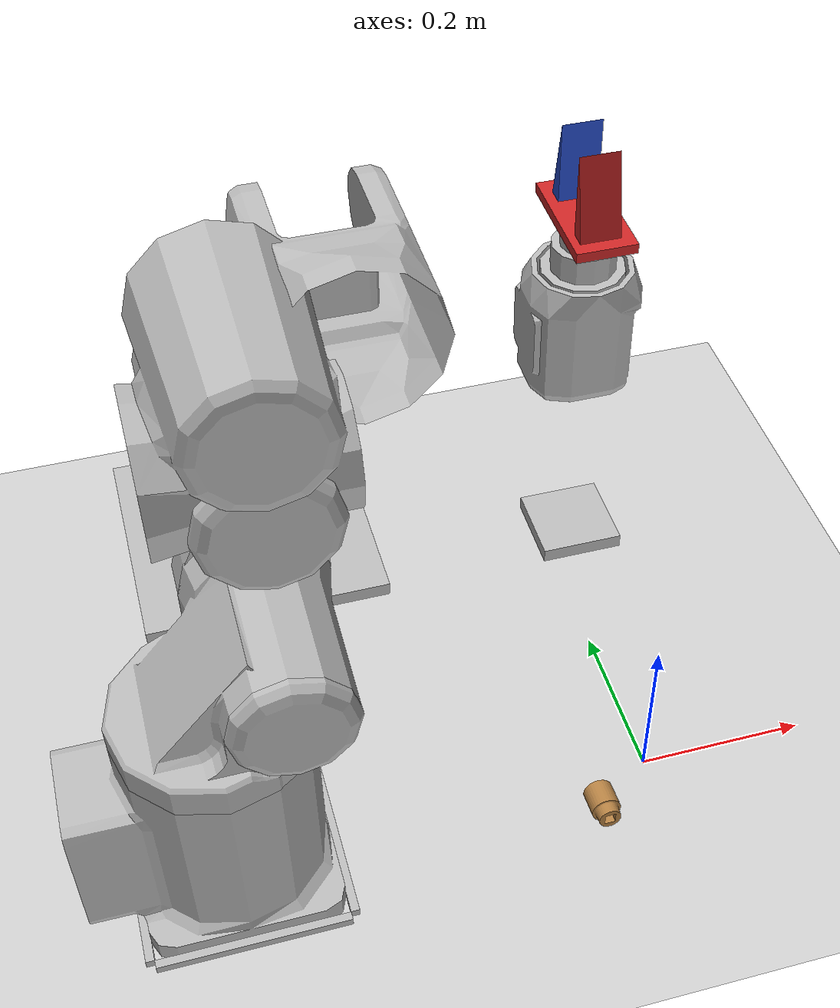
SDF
<?xml version="1.0" encoding="UTF-8"?>
<sdf version="1.4">
   <world name="default">
      <!-- Ground Plane -->
      <include>
         <uri>model://sun</uri>
      </include>

		<include>
			<uri>model://ground_plane</uri>
		</include>
      <scene>
         <sky>
            <clouds>
               <ambient>.5 .5 .5 1</ambient>
            </clouds>
         </sky>

      </scene>

<!--****以上是場景*******************************************-->

      <include>
<pose>-0.4 0.4 -0.35 0.000000 0.000000 0.000000</pose>
         <uri>/home/kevin/research/gazebo/evaluation_platform/models/table</uri>
      </include>

      <include>

<pose>0 0.3 -0.35 0.000000 0.000000 0.000000</pose>
         <uri>/home/kevin/research/gazebo/evaluation_platform/models/smalltable</uri>
      </include>

      <include>
<pose>-0.5 0 0  0.000000 0.000000 0.000000</pose>
         <uri>/home/kevin/research/gazebo/Arm_Control2/model/fixer_ar07</uri>
      </include>

	<include>
		<pose>-0.5 0 0 0 0 0</pose>
			<uri>/home/kevin/research/gazebo/Arm_Control2/model/ar6aixs</uri>
		</include>

	<include>
		<pose>-0.072305 -0.056376 0.017396 1.5 0 0</pose>
			<uri>/home/kevin/research/gazebo/Arm_Control2/model/socket_simple</uri>
		</include>

   </world>
</sdf>

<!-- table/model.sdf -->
<sdf version="1.4">

<model name="table">
<static>true</static>

<link name="link">
			<pose>0.000000 0.000000 0.473684 0.000000 0.000000 0.000000</pose>
        <inertial>
            <mass>1</mass>
            <inertia>
               <ixx>0.5</ixx>
               <ixy>0.0</ixy>
               <iyy>0.5</iyy>
               <ixz>0.0</ixz>
               <iyz>0.0</iyz>
               <izz>0.5</izz>
            </inertia>
         </inertial>
			<collision name="collision">
				<geometry>
				<box>
					<size>0.3 0.3 0.0175</size>
				</box>
        </geometry>
      </collision>
      <visual name="visual">
        <geometry>
				<box>
					<size>0.3 0.3 0.0175</size>
				</box>
		  </geometry>
      </visual>
    </link>

</model>
</sdf>

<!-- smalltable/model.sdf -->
<sdf version="1.4">

<model name="smalltable">
<static>true</static>

<link name="link">
			<pose>0.000000 0.000000 0.473684 0.000000 0.000000 0.000000</pose>
        <inertial>
            <mass>1</mass>
            <inertia>
               <ixx>0.5</ixx>
               <ixy>0.0</ixy>
               <iyy>0.5</iyy>
               <ixz>0.0</ixz>
               <iyz>0.0</iyz>
               <izz>0.5</izz>
            </inertia>
         </inertial>
			<collision name="collision">
				<geometry>
				<box>
					<size>0.1 0.1 0.0175</size>
				</box>
        </geometry>
      </collision>
      <visual name="visual">
        <geometry>
				<box>
					<size>0.1 0.1 0.0175</size>
				</box>
		  </geometry>
      </visual>
    </link>

</model>
</sdf>

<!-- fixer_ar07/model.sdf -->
<sdf version="1.4">

 <model name="fixer_ar07">
         <static>true</static>
         <link name="fixer">
            <pose>-0.115 0.000000 0.005 0.000000 0.000000 0.000000</pose>
            <inertial>
               <mass>.1</mass>
               <inertia>
                  <ixx>0.05</ixx>
                  <ixy>0.0</ixy>
                  <iyy>0.05</iyy>
                  <ixz>0.0</ixz>
                  <iyz>0.0</iyz>
                  <izz>0.05</izz>
               </inertia>
            </inertial>
            <collision name="fixer">
               <surface>
                  <friction>
                     <ode>
                        <mu>100000.0</mu>
                        <mu2>100000.0</mu2>
                        <slip1>0.0</slip1>
                        <slip2>0.0</slip2>
                     </ode>
                  </friction>
               </surface>
               <geometry>
                  <box>
                     <size>0.01 0.22  0.01</size>
                  </box>
               </geometry>
            </collision>
            <visual name="visual">
               <geometry>
                  <box>
                     <size> 0.01 0.22 0.01</size>
                  </box>
               </geometry>
            </visual>
         </link>
         <link name="fixr">
            <pose> 0.000000 -0.115 0.005 0.000000 0.000000 0.000000</pose>
            <inertial>
               <mass>.1</mass>
               <inertia>
                  <ixx>0.05</ixx>
                  <ixy>0.0</ixy>
                  <iyy>0.05</iyy>
                  <ixz>0.0</ixz>
                  <iyz>0.0</iyz>
                  <izz>0.05</izz>
               </inertia>
            </inertial>
            <collision name="fixer">
               <surface>
                  <friction>
                     <ode>
                        <mu>100000.0</mu>
                        <mu2>100000.0</mu2>
                        <slip1>0.0</slip1>
                        <slip2>0.0</slip2>
                     </ode>
                  </friction>
               </surface>
               <geometry>
                  <box>
                     <size>0.22 0.01   0.01</size>
                  </box>
               </geometry>
            </collision>
            <visual name="visual">
               <geometry>
                  <box>
                     <size> 0.22 0.01 0.01</size>
                  </box>
               </geometry>
            </visual>
         </link>

         <link name="fixefr">
            <pose>0.115 0.000000 0.005 0.000000 0.000000 0.000000</pose>
            <inertial>
               <mass>.1</mass>
               <inertia>
                  <ixx>0.05</ixx>
                  <ixy>0.0</ixy>
                  <iyy>0.05</iyy>
                  <ixz>0.0</ixz>
                  <iyz>0.0</iyz>
                  <izz>0.05</izz>
               </inertia>
            </inertial>
            <collision name="fixer">
               <surface>
                  <friction>
                     <ode>
                        <mu>100000.0</mu>
                        <mu2>100000.0</mu2>
                        <slip1>0.0</slip1>
                        <slip2>0.0</slip2>
                     </ode>
                  </friction>
               </surface>
               <geometry>
                  <box>
                     <size>0.01 0.22  0.01</size>
                  </box>
               </geometry>
            </collision>
            <visual name="visual">
               <geometry>
                  <box>
                     <size> 0.01 0.22 0.01</size>
                  </box>
               </geometry>
            </visual>
         </link>
         <link name="fqixr">
            <pose> 0.000000 0.115 0.005 0.000000 0.000000 0.000000</pose>
            <inertial>
               <mass>.1</mass>
               <inertia>
                  <ixx>0.05</ixx>
                  <ixy>0.0</ixy>
                  <iyy>0.05</iyy>
                  <ixz>0.0</ixz>
                  <iyz>0.0</iyz>
                  <izz>0.05</izz>
               </inertia>
            </inertial>
            <collision name="fixer">
               <surface>
                  <friction>
                     <ode>
                        <mu>100000.0</mu>
                        <mu2>100000.0</mu2>
                        <slip1>0.0</slip1>
                        <slip2>0.0</slip2>
                     </ode>
                  </friction>
               </surface>
               <geometry>
                  <box>
                     <size>0.22 0.01   0.01</size>
                  </box>
               </geometry>
            </collision>
            <visual name="visual">
               <geometry>
                  <box>
                     <size> 0.22 0.01 0.01</size>
                  </box>
               </geometry>
            </visual>
         </link>

      </model>
</sdf>

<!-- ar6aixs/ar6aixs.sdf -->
<sdf version="1.5">
   <model name="ar6aixs">
      <link name="base">
         <pose>0.000000 0.000000 0.125 0.000000 0.000000 0.000000</pose>
         <inertial>
            <mass>2000</mass>
            <inertia>
               <ixx>0.1</ixx>
               <ixy>0.0</ixy>
               <iyy>0.1</iyy>
               <ixz>0.0</ixz>
               <iyz>0.0</iyz>
               <izz>0.1</izz>
            </inertia>
         </inertial>
         <collision name="Base">
            <geometry>
               <mesh>
                  <uri>/home/kevin/research/gazebo/arm_control_AR605/model/ar6aixs/mesh/base.dae</uri>
               </mesh>
            </geometry>
            <surface>
               <friction>
                  <ode>
                     <mu>100</mu>
                     <mu2>50</mu2>
                  </ode>
               </friction>
            </surface>
         </collision>
         <visual name="Base">
            <geometry>
               <mesh>
                  <uri>/home/kevin/research/gazebo/arm_control_AR605/model/ar6aixs/mesh/base.dae</uri>
               </mesh>
            </geometry>
         </visual>
      </link>
      <link name="link1">
         <pose>0.000000 0.000000 0.25 0.000000 0.000000 0.000000</pose>
         <inertial>
            <mass>0.1</mass>
            <inertia>
               <ixx>0.1</ixx>
               <ixy>0.0</ixy>
               <iyy>0.1</iyy>
               <ixz>0.0</ixz>
               <iyz>0.0</iyz>
               <izz>0.1</izz>
            </inertia>
         </inertial>
         <collision name="link1">
            <geometry>
               <mesh>
                  <uri>/home/kevin/research/gazebo/arm_control_AR605/model/ar6aixs/mesh/link1.dae</uri>
               </mesh>
            </geometry>
            <surface>
               <friction>
                  <ode>
                     <mu>100</mu>
                     <mu2>50</mu2>
                  </ode>
               </friction>
            </surface>
         </collision>
         <visual name="link1">
            <geometry>
               <mesh>
                  <uri>/home/kevin/research/gazebo/arm_control_AR605/model/ar6aixs/mesh/link1.dae</uri>
               </mesh>
            </geometry>
         </visual>
      </link>
      <link name="link2">
         <pose>0.075000 0.000 0.345 0.000000 0.000000 0.000000</pose>
         <inertial>
            <mass>0.1</mass>
            <inertia>
               <ixx>0.1</ixx>
               <ixy>0.0</ixy>
               <iyy>0.1</iyy>
               <ixz>0.0</ixz>
               <iyz>0.0</iyz>
               <izz>0.1</izz>
            </inertia>
         </inertial>
         <collision name="link2">
            <geometry>
               <mesh>
                  <uri>/home/kevin/research/gazebo/arm_control_AR605/model/ar6aixs/mesh/link2.dae</uri>
               </mesh>
            </geometry>
            <surface>
               <friction>
                  <ode>
                     <mu>100</mu>
                     <mu2>50</mu2>
                  </ode>
               </friction>
            </surface>
         </collision>
         <visual name="link2">
            <geometry>
               <mesh>
                  <uri>/home/kevin/research/gazebo/arm_control_AR605/model/ar6aixs/mesh/link2.dae</uri>
               </mesh>
            </geometry>
         </visual>
      </link>
      <link name="link3">
         <pose>0.075000 0.000 0.615 0.000000 0.000000 0.000000</pose>
         <inertial>
            <mass>0.1</mass>
            <inertia>
               <ixx>0.1</ixx>
               <ixy>0.0</ixy>
               <iyy>0.1</iyy>
               <ixz>0.0</ixz>
               <iyz>0.0</iyz>
               <izz>0.1</izz>
            </inertia>
         </inertial>
         <collision name="link3">
            <geometry>
               <mesh>
                  <uri>/home/kevin/research/gazebo/arm_control_AR605/model/ar6aixs/mesh/link3.dae</uri>
               </mesh>
            </geometry>
            <surface>
               <friction>
                  <ode>
                     <mu>100</mu>
                     <mu2>50</mu2>
                  </ode>
               </friction>
            </surface>
         </collision>
         <visual name="link3">
            <geometry>
               <mesh>
                  <uri>/home/kevin/research/gazebo/arm_control_AR605/model/ar6aixs/mesh/link3.dae</uri>
               </mesh>
            </geometry>
         </visual>
      </link>
      <link name="link4">
         <pose>0.1810 0.000 0.705 0.000000 0.000000 0.000000</pose>
         <inertial>
            <mass>0.1</mass>
            <inertia>
               <ixx>0.1</ixx>
               <ixy>0.0</ixy>
               <iyy>0.1</iyy>
               <ixz>0.0</ixz>
               <iyz>0.0</iyz>
               <izz>0.1</izz>
            </inertia>
         </inertial>
         <collision name="link4">
            <geometry>
               <mesh>
                  <uri>/home/kevin/research/gazebo/arm_control_AR605/model/ar6aixs/mesh/link4.dae</uri>
               </mesh>
            </geometry>
            <surface>
               <friction>
                  <ode>
                     <mu>100</mu>
                     <mu2>50</mu2>
                  </ode>
               </friction>
            </surface>
         </collision>
         <visual name="link4">
            <geometry>
               <mesh>
                  <uri>/home/kevin/research/gazebo/arm_control_AR605/model/ar6aixs/mesh/link4.dae</uri>
               </mesh>
            </geometry>
         </visual>
      </link>
      <link name="link5">
         <pose>0.3750 0.000 0.705 0.000000 0.000000 0.000000</pose>
         <inertial>
            <mass>0.1</mass>
            <inertia>
               <ixx>0.1</ixx>
               <ixy>0.0</ixy>
               <iyy>0.1</iyy>
               <ixz>0.0</ixz>
               <iyz>0.0</iyz>
               <izz>0.1</izz>
            </inertia>
         </inertial>
         <collision name="link5">
            <geometry>
               <mesh>
                  <uri>/home/kevin/research/gazebo/arm_control_AR605/model/ar6aixs/mesh/link5.dae</uri>
               </mesh>
            </geometry>
            <surface>
               <friction>
                  <ode>
                     <mu>100</mu>
                     <mu2>50</mu2>
                  </ode>
               </friction>
            </surface>
         </collision>
         <visual name="link5">
            <geometry>
               <mesh>
                  <uri>/home/kevin/research/gazebo/arm_control_AR605/model/ar6aixs/mesh/link5.dae</uri>
               </mesh>
            </geometry>
         </visual>
      </link>
      <link name="link6">
         <pose>0.3750 0.000 0.705 0.000000 0.000000 0.000000</pose>
         <inertial>
            <mass>0.1</mass>
            <inertia>
               <ixx>0.1</ixx>
               <ixy>0.0</ixy>
               <iyy>0.1</iyy>
               <ixz>0.0</ixz>
               <iyz>0.0</iyz>
               <izz>0.1</izz>
            </inertia>
         </inertial>
         <collision name="link6">
            <geometry>
               <mesh>
                  <uri>/home/kevin/research/gazebo/arm_control_AR605/model/ar6aixs/mesh/link6.dae</uri>
               </mesh>
            </geometry>
            <surface>
               <friction>
                  <ode>
                     <mu>100</mu>
                     <mu2>50</mu2>
                  </ode>
               </friction>
            </surface>
         </collision>
         <visual name="link6">
            <geometry>
               <mesh>
                  <uri>/home/kevin/research/gazebo/arm_control_AR605/model/ar6aixs/mesh/link6.dae</uri>
               </mesh>
            </geometry>
         </visual>
      </link>

      <joint name="joint0" type="fixed">
         <pose>0.000000 0.000000 0.0 0.000000 0.000000 0.000000</pose>
         <child>base</child>
         <parent>world</parent>
         <axis>
            <xyz>0 0 1</xyz>
         </axis>
      </joint>

      <joint name="joint1" type="revolute">
         <pose>0.000000 0.000000 0.0 0.000000 0.000000 0.000000</pose>
         <child>link1</child>
         <parent>base</parent>
         <axis>
            <xyz>0 0 1</xyz>
            <limit>
               <lower>-2.967</lower>
               <upper>2.967</upper>
            </limit>
         </axis>
      </joint>
      <joint name="joint2" type="revolute">
         <pose>0.000000 0.000000 0.0 0.000000 0.000000 0.000000</pose>
         <child>link2</child>
         <parent>link1</parent>
         <axis>
            <xyz>0 1 0</xyz>
            <limit>
               <lower>-1.4835</lower>
               <upper>2.2689</upper>
            </limit>
         </axis>
      </joint>
      <joint name="joint3" type="revolute">
         <pose>0.000000 0.000000 0.0 0.000000 0.000000 0.000000</pose>
         <child>link3</child>
         <parent>link2</parent>
         <axis>
            <xyz>0 1 0</xyz>
            <limit>
               <lower>-1.919</lower>
               <upper>2.967</upper>
            </limit>
         </axis>
      </joint>
      <joint name="joint4" type="revolute">
         <pose>0.000000 0.000000 0.0 0.000000 0.000000 0.000000</pose>
         <child>link4</child>
         <parent>link3</parent>
         <axis>
            <xyz>1 0 0</xyz>
            <limit>
               <lower>-3.316</lower>
               <upper>3.316</upper>
            </limit>
         </axis>
      </joint>
      <joint name="joint5" type="revolute">
         <pose>0.000000 0.000000 0.0 0.000000 0.000000 0.000000</pose>
         <child>link5</child>
         <parent>link4</parent>
         <axis>
            <xyz>0 1 0</xyz>
            <limit>
               <lower>-2.1816</lower>
               <upper>2.1816</upper>
            </limit>
         </axis>
      </joint>
      <joint name="joint6" type="revolute">
         <pose>0.000000 0.000000 0.0 0.000000 0.000000 0.000000</pose>
         <child>link6</child>
         <parent>link5</parent>
         <axis>
            <xyz> 0 0 1 </xyz>
            <limit>
               <lower>-6.28</lower>
               <upper>6.28</upper>
            </limit>
         </axis>
      </joint>

	<include>
		<pose>0.375000 0.000000 0.8760  3.1415926 0 0.000000</pose>
		<uri>/home/kevin/research/gazebo/arm_control_AR605/model/gripper</uri>
	</include>

 <!--joint_6_gripper -->
     <joint name="joint7" type="revolute">
      <pose>0.000000 0.000000 0.004386 0.000000 0.000000 0.000000</pose>
      <child>gripper::plam</child>
      <parent>link6</parent>
      <axis>
         <xyz>0 0 1</xyz>
         <limit>
          <lower>0</lower>
          <upper>0</upper>
         </limit>
      </axis>
   </joint>

 <plugin name="ccc" filename="/home/kevin/research/gazebo/arm_control_AR605/Debug/libarm_control_AR605.so" />
   </model>
</sdf>

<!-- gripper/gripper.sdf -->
<sdf version="1.4">
   <model name="gripper">
      <link name="plam">
         <pose>0.000000 0.000000 0.074561 0.000000 0.000000 0.000000</pose>
         <inertial>
            <mass>.1</mass>
            <inertia>
               <ixx>0.05</ixx>
               <ixy>0.0</ixy>
               <iyy>0.05</iyy>
               <ixz>0.0</ixz>
               <iyz>0.0</iyz>
               <izz>0.05</izz>
            </inertia>
         </inertial>
         <collision name="collision">
            <surface>
               <friction>
                  <ode>
                     <mu>100000.0</mu>
                     <mu2>100000.0</mu2>
                     <slip1>0.0</slip1>
                     <slip2>0.0</slip2>
                  </ode>
               </friction>
            </surface>
            <geometry>
               <box>
                  <size>0.052632 0.105263 0.008772</size>
               </box>
            </geometry>
         </collision>
         <visual name="visual">
            <geometry>
               <box>
                  <size>0.052632 0.105263 0.008772</size>
               </box>
            </geometry>
            <material>
               <script>
                  <uri>file://media/materials/scripts/gazebo.material</uri>
                  <name>Gazebo/Red</name>
               </script>
            </material>
         </visual>
      </link>

      <link name="right_finger">
         <pose>0.000000 0.029825 0.035088 0.000000 0.000000 0.000000</pose>
         <inertial>
            <mass>.1</mass>
            <inertia>
               <ixx>0.05</ixx>
               <ixy>0.0</ixy>
               <iyy>0.05</iyy>
               <ixz>0.0</ixz>
               <iyz>0.0</iyz>
               <izz>0.05</izz>
            </inertia>
         </inertial>
         <collision name="collision">
            <surface>
               <bounce>
                  <restitution_coefficient>0</restitution_coefficient>
                  <threshold>99999999</threshold>
               </bounce>
               <friction>
                  <ode>
                     <mu>100000.0</mu>
                     <mu2>100000.0</mu2>
                     <slip1>0.0</slip1>
                     <slip2>0.0</slip2>
                  </ode>
               </friction>
            </surface>
            <geometry>
               <mesh>
                  <scale>0.045614 0.035088 0.035088</scale>
                  <uri>/home/kevin/research/gazebo/arm_control_AR605/model/gripper/right_finger.dae</uri>
               </mesh>
            </geometry>
         </collision>
         <visual name="visual">
            <material>
               <script>
                  <uri>file://media/materials/scripts/gazebo.material</uri>
                  <name>Gazebo/Red</name>
               </script>
            </material>
            <geometry>
               <mesh>
                  <scale>0.045614 0.035088 0.035088</scale>
                  <uri>/home/kevin/research/gazebo/arm_control_AR605/model/gripper/right_finger.dae</uri>
               </mesh>
            </geometry>
         </visual>
      </link>

      <link name="left_finger">
         <pose>0.000000 -0.025439 0.035088 0.000000 0.000000 0.000000</pose>
         <inertial>
            <mass>.1</mass>
            <inertia>
               <ixx>0.05</ixx>
               <ixy>0.0</ixy>
               <iyy>0.05</iyy>
               <ixz>0.0</ixz>
               <iyz>0.0</iyz>
               <izz>0.05</izz>
            </inertia>
         </inertial>
         <collision name="collision">
            <surface>
               <bounce>
                  <restitution_coefficient>0</restitution_coefficient>
                  <threshold>99999999</threshold>
               </bounce>
               <friction>
                  <ode>
                     <mu>100000.0</mu>
                     <mu2>100000.0</mu2>
                     <slip1>0.0</slip1>
                     <slip2>0.0</slip2>
                  </ode>
               </friction>
            </surface>
            <geometry>
               <mesh>
                  <scale>0.045614 0.035088 0.035088</scale>
                  <uri>/home/kevin/research/gazebo/arm_control_AR605/model/gripper/left_finger.dae</uri>
               </mesh>
            </geometry>
         </collision>
         <visual name="visual">
            <material>
               <script>
                  <uri>file://media/materials/scripts/gazebo.material</uri>
                  <name>Gazebo/Blue</name>
               </script>
            </material>
            <geometry>
               <mesh>
                  <scale>0.045614 0.035088 0.035088</scale>
                  <uri>/home/kevin/research/gazebo/arm_control_AR605/model/gripper/left_finger.dae</uri>
               </mesh>
            </geometry>
         </visual>
      </link>

      <joint name="right_joint" type="prismatic">
         <pose>0.000000 0.000000 0.035088 0.000000 0.000000 0.000000</pose>
         <child>right_finger</child>
         <parent>plam</parent>
         <axis>
            <dynamics>
               <damping>5</damping>
               <friction>5</friction>
            </dynamics>
            <xyz>0 1 0</xyz>
            <dynamics>
               <damping>5</damping>
               <friction>5</friction>
            </dynamics>
            <limit>
               <lower>-0.0228</lower>
               <upper>0</upper>
            </limit>
         </axis>
      </joint>
      <joint name="left_joint" type="prismatic">
         <pose>0.000000 0.000000 0.035088 0.000000 0.000000 0.000000</pose>
         <child>left_finger</child>
         <parent>plam</parent>
         <axis>
            <dynamics>
               <damping>5</damping>
               <friction>5</friction>
            </dynamics>
            <xyz>0 1 0</xyz>
            <limit>
               <lower>-0.0085</lower>
               <upper>0.0208</upper>
            </limit>
         </axis>
      </joint>

      <joint name="glue" type="revolute">
			<axis>1 0 0</axis>
         <pose>0.000000 0.000000 0.0 0.000000 0.000000 0.000000</pose>
         <child>dummy_for_glue</child>
         <parent>plam</parent>
      </joint>

      <link name="dummy_for_glue">
         <pose>0.000000 0.0 0.02 0.000000 0.000000 0.000000</pose>
 	 <inertial>
            <mass>.0001</mass>
         </inertial>
         <collision name="collision">
            <geometry>
               <sphere>
                  <radius>0.0001</radius>
               </sphere>
            </geometry>
         </collision>

         <visual name="visual">
            <geometry>
               <sphere>
                  <radius>0.001</radius>
               </sphere>
            </geometry>
         </visual>
      </link>

   </model>
</sdf>

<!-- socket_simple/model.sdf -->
<sdf version="1.4">
	<model name='socket'>

		<pose> 0 0 0 0 0 0 </pose>
		<link name="link">
			<inertial>
				<mass> 0.1 </mass>
				<pose> 0 0 0.00021547 0 0 0 </pose>
				<inertia>
					<ixx> 0.000024082 </ixx>
					<ixy> 0 </ixy>
					<ixz> 0 </ixz>
					<iyy> 0.000024082 </iyy>
					<iyz> 0 </iyz>
					<izz> 0.00001900477 </izz>
				</inertia>
			</inertial>

			<collision name="collision">
				<geometry>
					<mesh>
						<uri> /home/kevin/research/gazebo/Arm_Control2/model/socket_simple/meshes/socket_0_045m_simple.dae </uri>
						<scale> 1 1 1 </scale>
					</mesh>
				</geometry>
				<surface>
					<bounce>
						<restitution_coefficient> 0.1 </restitution_coefficient>
					</bounce>
					<friction>
						<ode>
							<mu> 0.9 </mu>
							<mu2> 0.9 </mu2>
						</ode>
					</friction>

				</surface>
			</collision>

			<visual name="visual">
				<material>
					<ambient> 0.71 0.506 0.2627 1 </ambient>
					<diffuse> 0.71 0.506 0.2627 1 </diffuse>
				</material>
				<geometry>
					<mesh>
						<uri> /home/kevin/research/gazebo/Arm_Control2/model/socket_simple/meshes/socket_0_045m_simple.dae </uri>
						<scale> 1 1 1 </scale>
					</mesh>
				</geometry>
			</visual>

		</link>
	</model>
</sdf>
